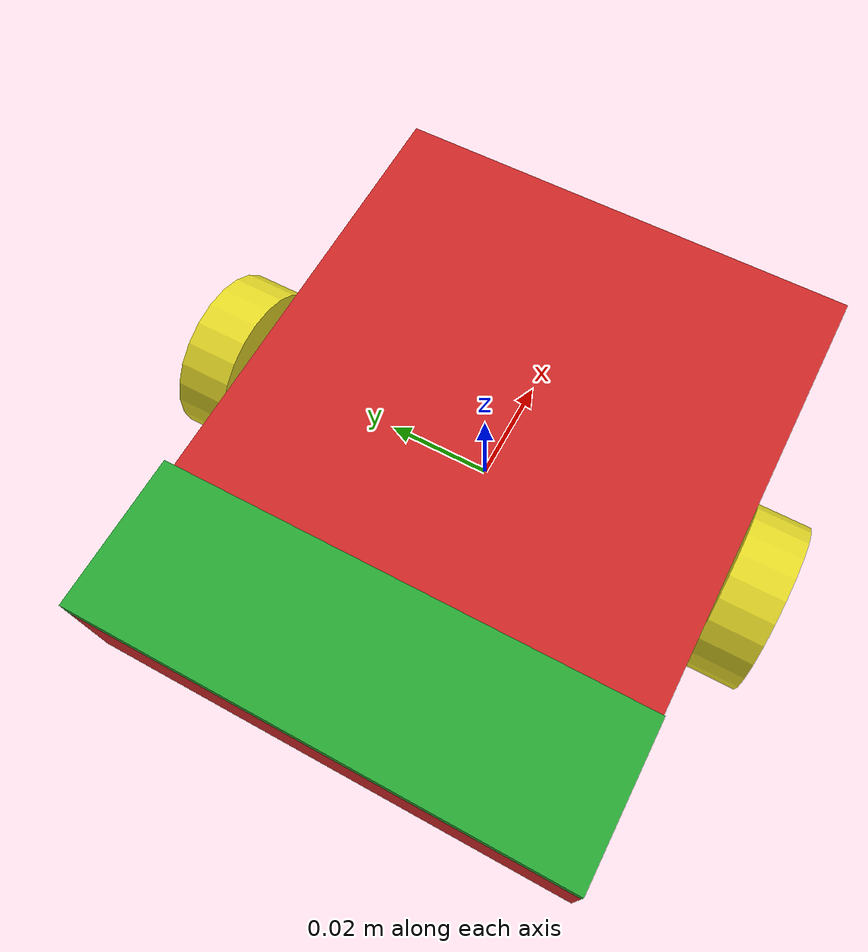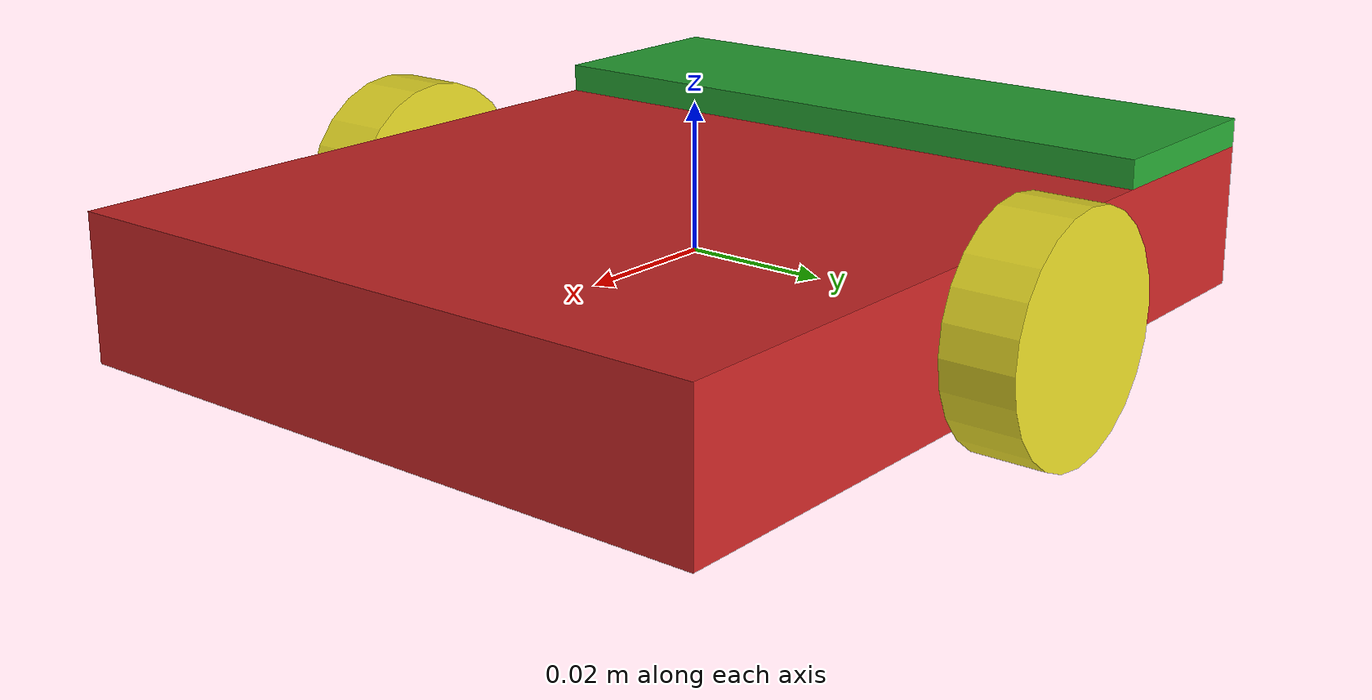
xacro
<?xml version="1.0"?>
<robot name="micromouse_robot" xmlns:xacro="http://www.ros.org/wiki/xacro">

<xacro:include filename="common/links/body.xacro" />
<xacro:include filename="common/links/wheel.xacro" />
<xacro:include filename="common/links/caster.xacro" />

<xacro:property name="body_link_x_dim" value="0.12"/>
<xacro:property name="body_link_y_dim" value="0.096"/> <!-- wheel to wheel -->
<xacro:property name="body_link_z_dim" value="0.02"/>
<xacro:property name="body_density" value="2000.0"/>

<xacro:property name="wheel_link_radius" value="0.016"/>
<xacro:property name="wheel_link_length" value="0.01"/>
<xacro:property name="wheel_link_x_location" value="0"/>
<xacro:property name="wheel_link_y_location_abs" value="${body_link_y_dim/2 + wheel_link_length/2}"/>
<xacro:property name="wheel_link_z_location" value="0"/>
<xacro:property name="wheel_separation" value="${2*wheel_link_y_location_abs - wheel_link_length}"/>
<xacro:property name="wheel_density" value="2000.0"/>

<xacro:property name="caster_link_radius" value="0.005"/>
<xacro:property name="caster_link_x_location" value="${-body_link_x_dim / 2.5}"/>
<xacro:property name="caster_link_y_location" value="0"/>
<xacro:property name="caster_link_z_location" value="${-body_link_z_dim / 2}"/>
<xacro:property name="caster_density" value="2000.0"/>

<xacro:property name="extra_weight_x" value="${-body_link_x_dim/8}"/>
<xacro:property name="extra_weight_z" value="${body_link_z_dim/2 + 0.002}"/>
<xacro:property name="extra_weight_link_x_dim" value="${body_link_x_dim/4}"/>
<xacro:property name="extra_weight_link_y_dim" value="${body_link_y_dim}"/>
<xacro:property name="extra_weight_link_z_dim" value="${(body_link_z_dim - extra_weight_z) / 2}"/>
<xacro:property name="extra_density" value="10000.0"/>

<xacro:property name="sensor_lidar_x_location" value="${body_link_x_dim/2}"/>
<xacro:property name="sensor_lidar_z_location" value="0"/>

<xacro:property name="imu_x_location" value="0"/>
<xacro:property name="imu_y_location" value="0"/>
<xacro:property name="imu_z_location" value="0"/>

<xacro:include filename="micromouse_robot.gazebo.xacro"/>

<xacro:body name="body_link" rpy="0 0 0" xyz="0 0 0" x="${body_link_x_dim}" y="${body_link_y_dim}" z="${body_link_z_dim}" density="${body_density}" />
<xacro:body name="extra_weight_link" rpy="0 0 0" xyz="${extra_weight_x} 0 ${extra_weight_z}" x="${extra_weight_link_x_dim}" y="${extra_weight_link_y_dim}" z="${extra_weight_link_z_dim}" density="${extra_density}" />
<xacro:wheel name="wheel1_link" rpy="${pi/2} 0 0" xyz="0 0 0" radius="${wheel_link_radius}" length="${wheel_link_length}" density="${wheel_density}" />
<xacro:wheel name="wheel2_link" rpy="${pi/2} 0 0" xyz="0 0 0" radius="${wheel_link_radius}" length="${wheel_link_length}" density="${wheel_density}" />
<xacro:caster name="caster_link" rpy="0 0 0" xyz="0 0 0" radius="${caster_link_radius}" density="${caster_density}" />

<link name="dummy_link">
</link>

<joint name="dummy_joint" type="fixed">
	<parent link="dummy_link"/>
	<child link="body_link"/>
</joint>

<joint name="extra_mass_joint" type="fixed">
	<parent link="body_link"/>
	<child link="extra_weight_link"/>
	<origin xyz="${-body_link_x_dim/4} 0 0" rpy="0 0 0"/>
</joint>

<joint name="right_wheel_joint" type="continuous">
	<parent link="body_link"/>
	<child link="wheel1_link"/>
	<origin xyz="${wheel_link_x_location} ${-wheel_link_y_location_abs} ${wheel_link_z_location}" rpy="0 0 0"/>
	<axis xyz="0 1 0"/>
	<limit effort="1000" velocity="1000"/>
	<dynamics damping="0.0001"/>
</joint>

<joint name="left_wheel_joint" type="continuous">
	<parent link="body_link"/>
	<child link="wheel2_link"/>
	<origin xyz="${wheel_link_x_location} ${wheel_link_y_location_abs} ${wheel_link_z_location}" rpy="0 0 0"/>
	<axis xyz="0 1 0"/>
	<limit effort="1000" velocity="1000"/>
	<dynamics damping="0.0001"/>
</joint>

<joint name="caster_joint" type="fixed">
	<parent link="body_link"/>
	<child link="caster_link"/>
	<origin xyz="${caster_link_x_location} ${caster_link_y_location} ${caster_link_z_location}" rpy="0 0 0"/>
	<limit effort="1000" velocity="1000"/>
	<dynamics damping="1.0" friction="1.0"/>
</joint>

</robot>

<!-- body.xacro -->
<robot xmlns:xacro="http://www.ros.org/wiki/xacro">
	<xacro:macro name="body" params="name density x y z xyz rpy">
		<link name="${name}">
			<xacro:include filename="common/inertial/box.xacro" />
			<visual>
				<origin rpy="${rpy}" xyz="${xyz}"/>
				<geometry>
					<box size="${x} ${y} ${z}"/>
				</geometry>
			</visual>
			<collision>
				<origin rpy="${rpy}" xyz="${xyz}"/>
				<geometry>
					<box size="${x} ${y} ${z}"/>
				</geometry>
			</collision>
			<xacro:box density="${density}" x="${x}" y="${y}" z="${z}" />
		</link>
	</xacro:macro>
</robot>

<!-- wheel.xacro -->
<robot xmlns:xacro="http://www.ros.org/wiki/xacro">
	<xacro:macro name="wheel" params="name density radius length xyz rpy">
	<xacro:include filename="common/inertial/cylinder.xacro" />
		<link name="${name}">
			<visual>
				<origin rpy="${rpy}" xyz="${xyz}"/>
				<geometry>
					<cylinder length="${length}" radius="${radius}"/>
				</geometry>
			</visual>
			<collision>
				<origin rpy="${rpy}" xyz="${xyz}"/>
				<geometry>
					<cylinder length="${length}" radius="${radius}"/>
				</geometry>
			</collision>
			<xacro:cylinder density="${density}" radius="${radius}" length="${length}" />
		</link>
	</xacro:macro>
</robot>

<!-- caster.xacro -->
<robot xmlns:xacro="http://www.ros.org/wiki/xacro">
	<xacro:macro name="caster" params="name density radius xyz rpy">
		<xacro:include filename="common/inertial/sphere.xacro" />

		<link name="${name}">
			<visual>
				<origin rpy="${rpy}" xyz="${xyz}"/>
				<geometry>
					<sphere radius="${radius}"/>
				</geometry>
			</visual>
			<collision>
				<origin rpy="${rpy}" xyz="${xyz}"/>
				<geometry>
					<sphere radius="${radius}"/>
				</geometry>
			</collision>
			<xacro:sphere radius="${radius}" density="${density}" />
		</link>
	</xacro:macro>
</robot>

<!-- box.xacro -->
<robot xmlns:xacro="http://www.ros.org/wiki/xacro">
	<xacro:macro name="box" params="density x y z">
		<xacro:property name="mass" value="${body_density*x*y*z}"/>
		<inertial>
			<origin rpy="0 0 0" xyz="0 0 0"/>
			<mass value="${mass}"/>
			<inertia ixx="${(1.0/12.0)*mass*(y*y + z*z)}"
			ixy="0.0"
			ixz="0.0"
			iyz="0.0"
			iyy="${(1/12)*mass*(x*x + z*z)}"
			izz="${(1/12)*mass*(y*y + x*x)}"
			/>
		</inertial>
	</xacro:macro>
</robot>

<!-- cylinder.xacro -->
<robot xmlns:xacro="http://www.ros.org/wiki/xacro">
	<xacro:macro name="cylinder" params="density radius length">
	<xacro:property name="wheel_mass" value="${density*pi*radius*radius*length}"/>
	<xacro:property name="Iz_wheel" value="${0.5*wheel_mass*radius*radius}"/>
	<xacro:property name="I_wheel" value="${(1.0/12.0)*wheel_mass*(3*radius*radius + length*length)}"/>
		<inertial>
			<origin rpy="0 0 0" xyz="0 0 0"/>
			<mass value="${wheel_mass}"/>
			<inertia ixx="${I_wheel}" ixy="0.0" ixz="0.0" iyy="${I_wheel}" iyz="0.0" izz="${Iz_wheel}"/>
		</inertial>
	</xacro:macro>
</robot>

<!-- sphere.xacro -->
<robot xmlns:xacro="http://www.ros.org/wiki/xacro">
	<xacro:macro name="sphere" params="density radius">
		<xacro:property name="mass" value="${density*(4/3)*pi*radius*radius*radius}"/>
		<xacro:property name="I" value="${(2/5)*mass*radius*radius}"/>
		<inertial>
			<origin rpy="0 0 0" xyz="0 0 0"/>
			<mass value="${mass}"/>
			<inertia ixx="${I}" ixy="0.0" ixz="0.0" iyy="${I}" iyz="0.0" izz="${I}"/>
		</inertial>
	</xacro:macro>
</robot>
